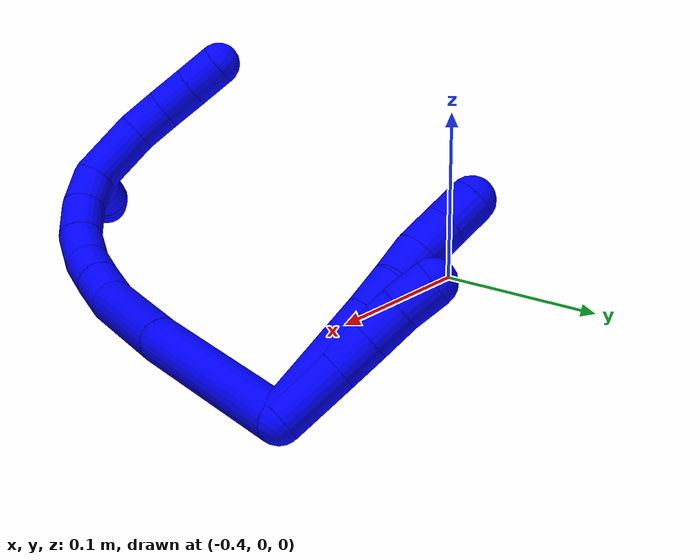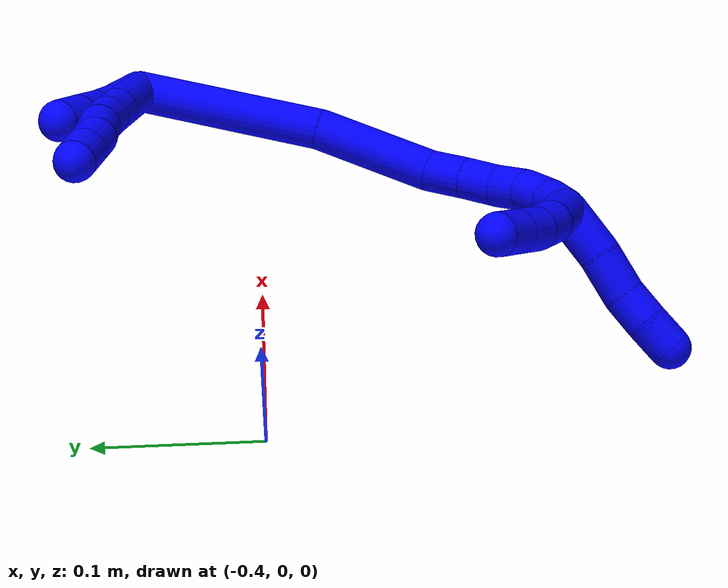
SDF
<sdf version="1.7">
 <world name="default">
  <model name="1">
   <static>0</static>
   <link name="1">
    <collision name="collision-cylinder-e_1_2_8">
     <pose>7.4e-05 0.002067 0.023846 -0.086455 0.003076 -0.000133</pose>
     <geometry><cylinder><radius>0.0125</radius><length>0.047871</length></cylinder></geometry>
     <surface>
      <friction><ode><mu>1.16</mu><mu2>1.16</mu2><slip1>0</slip1><slip2>0</slip2></ode></friction>
      <contact><ode><kp>1e+06</kp><kd>1</kd><max_vel>0</max_vel><min_depth>0.001</min_depth></ode></contact>
     </surface>
    </collision>
    <visual name="visual-cylinder-e_1_2_8">
     <pose>7.4e-05 0.002067 0.023846 -0.086455 0.003076 -0.000133</pose>
     <geometry><cylinder><radius>0.0125</radius><length>0.047871</length></cylinder></geometry>
     <material><ambient>0 0 1 1</ambient></material>
    </visual>
    <collision name="collision-cylinder-e_2_8_9">
     <pose>0.000148 0.005026 0.0579 -0.087249 3.4e-05 -1e-06</pose>
     <geometry><cylinder><radius>0.0125</radius><length>0.020493</length></cylinder></geometry>
     <surface>
      <friction><ode><mu>1.16</mu><mu2>1.16</mu2><slip1>0</slip1><slip2>0</slip2></ode></friction>
      <contact><ode><kp>1e+06</kp><kd>1</kd><max_vel>0</max_vel><min_depth>0.001</min_depth></ode></contact>
     </surface>
    </collision>
    <visual name="visual-cylinder-e_2_8_9">
     <pose>0.000148 0.005026 0.0579 -0.087249 3.4e-05 -1e-06</pose>
     <geometry><cylinder><radius>0.0125</radius><length>0.020493</length></cylinder></geometry>
     <material><ambient>0 0 1 1</ambient></material>
    </visual>
    <collision name="collision-cylinder-e_3_9_10">
     <pose>1.8e-05 0.006374 0.078804 -0.042488 -0.012103 0.000257</pose>
     <geometry><cylinder><radius>0.0125</radius><length>0.021415</length></cylinder></geometry>
     <surface>
      <friction><ode><mu>1.16</mu><mu2>1.16</mu2><slip1>0</slip1><slip2>0</slip2></ode></friction>
      <contact><ode><kp>1e+06</kp><kd>1</kd><max_vel>0</max_vel><min_depth>0.001</min_depth></ode></contact>
     </surface>
    </collision>
    <visual name="visual-cylinder-e_3_9_10">
     <pose>1.8e-05 0.006374 0.078804 -0.042488 -0.012103 0.000257</pose>
     <geometry><cylinder><radius>0.0125</radius><length>0.021415</length></cylinder></geometry>
     <material><ambient>0 0 1 1</ambient></material>
    </visual>
    <collision name="collision-cylinder-e_4_10_11">
     <pose>-0.001721 0.006243 0.099373 0.059308 -0.161403 -0.004798</pose>
     <geometry><cylinder><radius>0.0125</radius><length>0.02004</length></cylinder></geometry>
     <surface>
      <friction><ode><mu>1.16</mu><mu2>1.16</mu2><slip1>0</slip1><slip2>0</slip2></ode></friction>
      <contact><ode><kp>1e+06</kp><kd>1</kd><max_vel>0</max_vel><min_depth>0.001</min_depth></ode></contact>
     </surface>
    </collision>
    <visual name="visual-cylinder-e_4_10_11">
     <pose>-0.001721 0.006243 0.099373 0.059308 -0.161403 -0.004798</pose>
     <geometry><cylinder><radius>0.0125</radius><length>0.02004</length></cylinder></geometry>
     <material><ambient>0 0 1 1</ambient></material>
    </visual>
    <collision name="collision-cylinder-e_5_11_12">
     <pose>-0.004341 0.006939 0.119127 -0.12911 -0.101004 0.006535</pose>
     <geometry><cylinder><radius>0.0125</radius><length>0.02003</length></cylinder></geometry>
     <surface>
      <friction><ode><mu>1.16</mu><mu2>1.16</mu2><slip1>0</slip1><slip2>0</slip2></ode></friction>
      <contact><ode><kp>1e+06</kp><kd>1</kd><max_vel>0</max_vel><min_depth>0.001</min_depth></ode></contact>
     </surface>
    </collision>
    <visual name="visual-cylinder-e_5_11_12">
     <pose>-0.004341 0.006939 0.119127 -0.12911 -0.101004 0.006535</pose>
     <geometry><cylinder><radius>0.0125</radius><length>0.02003</length></cylinder></geometry>
     <material><ambient>0 0 1 1</ambient></material>
    </visual>
    <collision name="collision-cylinder-e_6_12_6">
     <pose>-0.006372 0.00952 0.138947 -0.129811 -0.101508 0.006603</pose>
     <geometry><cylinder><radius>0.0125</radius><length>0.020151</length></cylinder></geometry>
     <surface>
      <friction><ode><mu>1.16</mu><mu2>1.16</mu2><slip1>0</slip1><slip2>0</slip2></ode></friction>
      <contact><ode><kp>1e+06</kp><kd>1</kd><max_vel>0</max_vel><min_depth>0.001</min_depth></ode></contact>
     </surface>
    </collision>
    <visual name="visual-cylinder-e_6_12_6">
     <pose>-0.006372 0.00952 0.138947 -0.129811 -0.101508 0.006603</pose>
     <geometry><cylinder><radius>0.0125</radius><length>0.020151</length></cylinder></geometry>
     <material><ambient>0 0 1 1</ambient></material>
    </visual>
    <collision name="collision-cylinder-e_1_2_13">
     <pose>0.000536 0.004308 0.017839 -0.236956 0.029216 -0.003478</pose>
     <geometry><cylinder><radius>0.0125</radius><length>0.03672</length></cylinder></geometry>
     <surface>
      <friction><ode><mu>1.16</mu><mu2>1.16</mu2><slip1>0</slip1><slip2>0</slip2></ode></friction>
      <contact><ode><kp>1e+06</kp><kd>1</kd><max_vel>0</max_vel><min_depth>0.001</min_depth></ode></contact>
     </surface>
    </collision>
    <visual name="visual-cylinder-e_1_2_13">
     <pose>0.000536 0.004308 0.017839 -0.236956 0.029216 -0.003478</pose>
     <geometry><cylinder><radius>0.0125</radius><length>0.03672</length></cylinder></geometry>
     <material><ambient>0 0 1 1</ambient></material>
    </visual>
    <collision name="collision-cylinder-e_2_13_14">
     <pose>0.002017 0.011383 0.046001 -0.261838 0.088167 -0.011616</pose>
     <geometry><cylinder><radius>0.0125</radius><length>0.021457</length></cylinder></geometry>
     <surface>
      <friction><ode><mu>1.16</mu><mu2>1.16</mu2><slip1>0</slip1><slip2>0</slip2></ode></friction>
      <contact><ode><kp>1e+06</kp><kd>1</kd><max_vel>0</max_vel><min_depth>0.001</min_depth></ode></contact>
     </surface>
    </collision>
    <visual name="visual-cylinder-e_2_13_14">
     <pose>0.002017 0.011383 0.046001 -0.261838 0.088167 -0.011616</pose>
     <geometry><cylinder><radius>0.0125</radius><length>0.021457</length></cylinder></geometry>
     <material><ambient>0 0 1 1</ambient></material>
    </visual>
    <collision name="collision-cylinder-e_3_14_15">
     <pose>0.004508 0.017018 0.066477 -0.275365 0.145483 -0.020193</pose>
     <geometry><cylinder><radius>0.0125</radius><length>0.021326</length></cylinder></geometry>
     <surface>
      <friction><ode><mu>1.16</mu><mu2>1.16</mu2><slip1>0</slip1><slip2>0</slip2></ode></friction>
      <contact><ode><kp>1e+06</kp><kd>1</kd><max_vel>0</max_vel><min_depth>0.001</min_depth></ode></contact>
     </surface>
    </collision>
    <visual name="visual-cylinder-e_3_14_15">
     <pose>0.004508 0.017018 0.066477 -0.275365 0.145483 -0.020193</pose>
     <geometry><cylinder><radius>0.0125</radius><length>0.021326</length></cylinder></geometry>
     <material><ambient>0 0 1 1</ambient></material>
    </visual>
    <collision name="collision-cylinder-e_4_15_5">
     <pose>0.007408 0.02364 0.086069 -0.378475 0.132584 -0.02543</pose>
     <geometry><cylinder><radius>0.0125</radius><length>0.020497</length></cylinder></geometry>
     <surface>
      <friction><ode><mu>1.16</mu><mu2>1.16</mu2><slip1>0</slip1><slip2>0</slip2></ode></friction>
      <contact><ode><kp>1e+06</kp><kd>1</kd><max_vel>0</max_vel><min_depth>0.001</min_depth></ode></contact>
     </surface>
    </collision>
    <visual name="visual-cylinder-e_4_15_5">
     <pose>0.007408 0.02364 0.086069 -0.378475 0.132584 -0.02543</pose>
     <geometry><cylinder><radius>0.0125</radius><length>0.020497</length></cylinder></geometry>
     <material><ambient>0 0 1 1</ambient></material>
    </visual>
    <collision name="collision-cylinder-e_1_2_16">
     <pose>-0.023833 -0.052454 0.007282 1.43285 -0.422896 -0.369565</pose>
     <geometry><cylinder><radius>0.0125</radius><length>0.116147</length></cylinder></geometry>
     <surface>
      <friction><ode><mu>1.16</mu><mu2>1.16</mu2><slip1>0</slip1><slip2>0</slip2></ode></friction>
      <contact><ode><kp>1e+06</kp><kd>1</kd><max_vel>0</max_vel><min_depth>0.001</min_depth></ode></contact>
     </surface>
    </collision>
    <visual name="visual-cylinder-e_1_2_16">
     <pose>-0.023833 -0.052454 0.007282 1.43285 -0.422896 -0.369565</pose>
     <geometry><cylinder><radius>0.0125</radius><length>0.116147</length></cylinder></geometry>
     <material><ambient>0 0 1 1</ambient></material>
    </visual>
    <collision name="collision-cylinder-e_2_16_17">
     <pose>-0.066781 -0.135028 0.021354 1.34908 -0.55432 -0.447368</pose>
     <geometry><cylinder><radius>0.0125</radius><length>0.072625</length></cylinder></geometry>
     <surface>
      <friction><ode><mu>1.16</mu><mu2>1.16</mu2><slip1>0</slip1><slip2>0</slip2></ode></friction>
      <contact><ode><kp>1e+06</kp><kd>1</kd><max_vel>0</max_vel><min_depth>0.001</min_depth></ode></contact>
     </surface>
    </collision>
    <visual name="visual-cylinder-e_2_16_17">
     <pose>-0.066781 -0.135028 0.021354 1.34908 -0.55432 -0.447368</pose>
     <geometry><cylinder><radius>0.0125</radius><length>0.072625</length></cylinder></geometry>
     <material><ambient>0 0 1 1</ambient></material>
    </visual>
    <collision name="collision-cylinder-e_3_17_18">
     <pose>-0.089901 -0.175559 0.032056 1.2114 -0.34574 -0.240684</pose>
     <geometry><cylinder><radius>0.0125</radius><length>0.023645</length></cylinder></geometry>
     <surface>
      <friction><ode><mu>1.16</mu><mu2>1.16</mu2><slip1>0</slip1><slip2>0</slip2></ode></friction>
      <contact><ode><kp>1e+06</kp><kd>1</kd><max_vel>0</max_vel><min_depth>0.001</min_depth></ode></contact>
     </surface>
    </collision>
    <visual name="visual-cylinder-e_3_17_18">
     <pose>-0.089901 -0.175559 0.032056 1.2114 -0.34574 -0.240684</pose>
     <geometry><cylinder><radius>0.0125</radius><length>0.023645</length></cylinder></geometry>
     <material><ambient>0 0 1 1</ambient></material>
    </visual>
    <collision name="collision-cylinder-e_4_18_19">
     <pose>-0.097643 -0.195069 0.039848 1.16765 -0.361134 -0.24005</pose>
     <geometry><cylinder><radius>0.0125</radius><length>0.021145</length></cylinder></geometry>
     <surface>
      <friction><ode><mu>1.16</mu><mu2>1.16</mu2><slip1>0</slip1><slip2>0</slip2></ode></friction>
      <contact><ode><kp>1e+06</kp><kd>1</kd><max_vel>0</max_vel><min_depth>0.001</min_depth></ode></contact>
     </surface>
    </collision>
    <visual name="visual-cylinder-e_4_18_19">
     <pose>-0.097643 -0.195069 0.039848 1.16765 -0.361134 -0.24005</pose>
     <geometry><cylinder><radius>0.0125</radius><length>0.021145</length></cylinder></geometry>
     <material><ambient>0 0 1 1</ambient></material>
    </visual>
    <collision name="collision-cylinder-e_5_19_20">
     <pose>-0.103314 -0.212619 0.049746 0.952068 -0.184372 -0.095256</pose>
     <geometry><cylinder><radius>0.0125</radius><length>0.021108</length></cylinder></geometry>
     <surface>
      <friction><ode><mu>1.16</mu><mu2>1.16</mu2><slip1>0</slip1><slip2>0</slip2></ode></friction>
      <contact><ode><kp>1e+06</kp><kd>1</kd><max_vel>0</max_vel><min_depth>0.001</min_depth></ode></contact>
     </surface>
    </collision>
    <visual name="visual-cylinder-e_5_19_20">
     <pose>-0.103314 -0.212619 0.049746 0.952068 -0.184372 -0.095256</pose>
     <geometry><cylinder><radius>0.0125</radius><length>0.021108</length></cylinder></geometry>
     <material><ambient>0 0 1 1</ambient></material>
    </visual>
    <collision name="collision-cylinder-e_6_20_21">
     <pose>-0.10787 -0.228235 0.064594 0.681541 -0.22657 -0.080644</pose>
     <geometry><cylinder><radius>0.0125</radius><length>0.023339</length></cylinder></geometry>
     <surface>
      <friction><ode><mu>1.16</mu><mu2>1.16</mu2><slip1>0</slip1><slip2>0</slip2></ode></friction>
      <contact><ode><kp>1e+06</kp><kd>1</kd><max_vel>0</max_vel><min_depth>0.001</min_depth></ode></contact>
     </surface>
    </collision>
    <visual name="visual-cylinder-e_6_20_21">
     <pose>-0.10787 -0.228235 0.064594 0.681541 -0.22657 -0.080644</pose>
     <geometry><cylinder><radius>0.0125</radius><length>0.023339</length></cylinder></geometry>
     <material><ambient>0 0 1 1</ambient></material>
    </visual>
    <collision name="collision-cylinder-e_7_21_1">
     <pose>-0.111975 -0.23979 0.083396 0.41486 -0.135334 -0.028524</pose>
     <geometry><cylinder><radius>0.0125</radius><length>0.021991</length></cylinder></geometry>
     <surface>
      <friction><ode><mu>1.16</mu><mu2>1.16</mu2><slip1>0</slip1><slip2>0</slip2></ode></friction>
      <contact><ode><kp>1e+06</kp><kd>1</kd><max_vel>0</max_vel><min_depth>0.001</min_depth></ode></contact>
     </surface>
    </collision>
    <visual name="visual-cylinder-e_7_21_1">
     <pose>-0.111975 -0.23979 0.083396 0.41486 -0.135334 -0.028524</pose>
     <geometry><cylinder><radius>0.0125</radius><length>0.021991</length></cylinder></geometry>
     <material><ambient>0 0 1 1</ambient></material>
    </visual>
    <collision name="collision-cylinder-e_1_1_22">
     <pose>-0.111791 -0.241357 0.111247 -0.156619 0.091868 -0.007214</pose>
     <geometry><cylinder><radius>0.0125</radius><length>0.036357</length></cylinder></geometry>
     <surface>
      <friction><ode><mu>1.16</mu><mu2>1.16</mu2><slip1>0</slip1><slip2>0</slip2></ode></friction>
      <contact><ode><kp>1e+06</kp><kd>1</kd><max_vel>0</max_vel><min_depth>0.001</min_depth></ode></contact>
     </surface>
    </collision>
    <visual name="visual-cylinder-e_1_1_22">
     <pose>-0.111791 -0.241357 0.111247 -0.156619 0.091868 -0.007214</pose>
     <geometry><cylinder><radius>0.0125</radius><length>0.036357</length></cylinder></geometry>
     <material><ambient>0 0 1 1</ambient></material>
    </visual>
    <collision name="collision-cylinder-e_2_22_23">
     <pose>-0.108695 -0.235065 0.139061 -0.33597 0.134866 -0.022905</pose>
     <geometry><cylinder><radius>0.0125</radius><length>0.021237</length></cylinder></geometry>
     <surface>
      <friction><ode><mu>1.16</mu><mu2>1.16</mu2><slip1>0</slip1><slip2>0</slip2></ode></friction>
      <contact><ode><kp>1e+06</kp><kd>1</kd><max_vel>0</max_vel><min_depth>0.001</min_depth></ode></contact>
     </surface>
    </collision>
    <visual name="visual-cylinder-e_2_22_23">
     <pose>-0.108695 -0.235065 0.139061 -0.33597 0.134866 -0.022905</pose>
     <geometry><cylinder><radius>0.0125</radius><length>0.021237</length></cylinder></geometry>
     <material><ambient>0 0 1 1</ambient></material>
    </visual>
    <collision name="collision-cylinder-e_3_23_24">
     <pose>-0.104484 -0.227074 0.158411 -0.447662 0.260372 -0.059592</pose>
     <geometry><cylinder><radius>0.0125</radius><length>0.02162</length></cylinder></geometry>
     <surface>
      <friction><ode><mu>1.16</mu><mu2>1.16</mu2><slip1>0</slip1><slip2>0</slip2></ode></friction>
      <contact><ode><kp>1e+06</kp><kd>1</kd><max_vel>0</max_vel><min_depth>0.001</min_depth></ode></contact>
     </surface>
    </collision>
    <visual name="visual-cylinder-e_3_23_24">
     <pose>-0.104484 -0.227074 0.158411 -0.447662 0.260372 -0.059592</pose>
     <geometry><cylinder><radius>0.0125</radius><length>0.02162</length></cylinder></geometry>
     <material><ambient>0 0 1 1</ambient></material>
    </visual>
    <collision name="collision-cylinder-e_4_24_4">
     <pose>-0.099035 -0.218299 0.176927 -0.437278 0.259497 -0.057967</pose>
     <geometry><cylinder><radius>0.0125</radius><length>0.020786</length></cylinder></geometry>
     <surface>
      <friction><ode><mu>1.16</mu><mu2>1.16</mu2><slip1>0</slip1><slip2>0</slip2></ode></friction>
      <contact><ode><kp>1e+06</kp><kd>1</kd><max_vel>0</max_vel><min_depth>0.001</min_depth></ode></contact>
     </surface>
    </collision>
    <visual name="visual-cylinder-e_4_24_4">
     <pose>-0.099035 -0.218299 0.176927 -0.437278 0.259497 -0.057967</pose>
     <geometry><cylinder><radius>0.0125</radius><length>0.020786</length></cylinder></geometry>
     <material><ambient>0 0 1 1</ambient></material>
    </visual>
    <collision name="collision-cylinder-e_1_1_25">
     <pose>-0.127984 -0.250769 0.095837 1.21208 -1.11974 -0.819571</pose>
     <geometry><cylinder><radius>0.0125</radius><length>0.03228</length></cylinder></geometry>
     <surface>
      <friction><ode><mu>1.16</mu><mu2>1.16</mu2><slip1>0</slip1><slip2>0</slip2></ode></friction>
      <contact><ode><kp>1e+06</kp><kd>1</kd><max_vel>0</max_vel><min_depth>0.001</min_depth></ode></contact>
     </surface>
    </collision>
    <visual name="visual-cylinder-e_1_1_25">
     <pose>-0.127984 -0.250769 0.095837 1.21208 -1.11974 -0.819571</pose>
     <geometry><cylinder><radius>0.0125</radius><length>0.03228</length></cylinder></geometry>
     <material><ambient>0 0 1 1</ambient></material>
    </visual>
    <collision name="collision-cylinder-e_2_25_26">
     <pose>-0.155306 -0.26135 0.100158 1.13662 -1.2395 -0.855085</pose>
     <geometry><cylinder><radius>0.0125</radius><length>0.027064</length></cylinder></geometry>
     <surface>
      <friction><ode><mu>1.16</mu><mu2>1.16</mu2><slip1>0</slip1><slip2>0</slip2></ode></friction>
      <contact><ode><kp>1e+06</kp><kd>1</kd><max_vel>0</max_vel><min_depth>0.001</min_depth></ode></contact>
     </surface>
    </collision>
    <visual name="visual-cylinder-e_2_25_26">
     <pose>-0.155306 -0.26135 0.100158 1.13662 -1.2395 -0.855085</pose>
     <geometry><cylinder><radius>0.0125</radius><length>0.027064</length></cylinder></geometry>
     <material><ambient>0 0 1 1</ambient></material>
    </visual>
    <collision name="collision-cylinder-e_3_26_27">
     <pose>-0.176911 -0.269849 0.104103 1.13594 -1.0573 -0.71355</pose>
     <geometry><cylinder><radius>0.0125</radius><length>0.020227</length></cylinder></geometry>
     <surface>
      <friction><ode><mu>1.16</mu><mu2>1.16</mu2><slip1>0</slip1><slip2>0</slip2></ode></friction>
      <contact><ode><kp>1e+06</kp><kd>1</kd><max_vel>0</max_vel><min_depth>0.001</min_depth></ode></contact>
     </surface>
    </collision>
    <visual name="visual-cylinder-e_3_26_27">
     <pose>-0.176911 -0.269849 0.104103 1.13594 -1.0573 -0.71355</pose>
     <geometry><cylinder><radius>0.0125</radius><length>0.020227</length></cylinder></geometry>
     <material><ambient>0 0 1 1</ambient></material>
    </visual>
    <collision name="collision-cylinder-e_4_27_3">
     <pose>-0.194693 -0.27915 0.107105 1.38329 -1.07256 -0.9148</pose>
     <geometry><cylinder><radius>0.0125</radius><length>0.020429</length></cylinder></geometry>
     <surface>
      <friction><ode><mu>1.16</mu><mu2>1.16</mu2><slip1>0</slip1><slip2>0</slip2></ode></friction>
      <contact><ode><kp>1e+06</kp><kd>1</kd><max_vel>0</max_vel><min_depth>0.001</min_depth></ode></contact>
     </surface>
    </collision>
    <visual name="visual-cylinder-e_4_27_3">
     <pose>-0.194693 -0.27915 0.107105 1.38329 -1.07256 -0.9148</pose>
     <geometry><cylinder><radius>0.0125</radius><length>0.020429</length></cylinder></geometry>
     <material><ambient>0 0 1 1</ambient></material>
    </visual>
    <collision name="collision-sphere-3">
     <pose>-0.203666 -0.283946 0.108015 0 -0 0</pose>
     <geometry><sphere><radius>0.0125</radius></sphere></geometry>
     <surface>
      <friction><ode><mu>1.16</mu><mu2>1.16</mu2><slip1>0</slip1><slip2>0</slip2></ode></friction>
      <contact><ode><kp>1e+06</kp><kd>1</kd><max_vel>0</max_vel><min_depth>0.001</min_depth></ode></contact>
     </surface>
    </collision>
    <visual name="visual-sphere-3">
     <pose>-0.203666 -0.283946 0.108015 0 -0 0</pose>
     <geometry><sphere><radius>0.0125</radius></sphere></geometry>
     <material><ambient>0 0 1 1</ambient></material>
    </visual>
    <collision name="collision-sphere-27">
     <pose>-0.18572 -0.274354 0.106196 0 -0 0</pose>
     <geometry><sphere><radius>0.0125</radius></sphere></geometry>
     <surface>
      <friction><ode><mu>1.16</mu><mu2>1.16</mu2><slip1>0</slip1><slip2>0</slip2></ode></friction>
      <contact><ode><kp>1e+06</kp><kd>1</kd><max_vel>0</max_vel><min_depth>0.001</min_depth></ode></contact>
     </surface>
    </collision>
    <visual name="visual-sphere-27">
     <pose>-0.18572 -0.274354 0.106196 0 -0 0</pose>
     <geometry><sphere><radius>0.0125</radius></sphere></geometry>
     <material><ambient>0 0 1 1</ambient></material>
    </visual>
    <collision name="collision-sphere-26">
     <pose>-0.168102 -0.265343 0.10201 0 -0 0</pose>
     <geometry><sphere><radius>0.0125</radius></sphere></geometry>
     <surface>
      <friction><ode><mu>1.16</mu><mu2>1.16</mu2><slip1>0</slip1><slip2>0</slip2></ode></friction>
      <contact><ode><kp>1e+06</kp><kd>1</kd><max_vel>0</max_vel><min_depth>0.001</min_depth></ode></contact>
     </surface>
    </collision>
    <visual name="visual-sphere-26">
     <pose>-0.168102 -0.265343 0.10201 0 -0 0</pose>
     <geometry><sphere><radius>0.0125</radius></sphere></geometry>
     <material><ambient>0 0 1 1</ambient></material>
    </visual>
    <collision name="collision-sphere-25">
     <pose>-0.14251 -0.257357 0.098307 0 -0 0</pose>
     <geometry><sphere><radius>0.0125</radius></sphere></geometry>
     <surface>
      <friction><ode><mu>1.16</mu><mu2>1.16</mu2><slip1>0</slip1><slip2>0</slip2></ode></friction>
      <contact><ode><kp>1e+06</kp><kd>1</kd><max_vel>0</max_vel><min_depth>0.001</min_depth></ode></contact>
     </surface>
    </collision>
    <visual name="visual-sphere-25">
     <pose>-0.14251 -0.257357 0.098307 0 -0 0</pose>
     <geometry><sphere><radius>0.0125</radius></sphere></geometry>
     <material><ambient>0 0 1 1</ambient></material>
    </visual>
    <collision name="collision-sphere-4">
     <pose>-0.096368 -0.214045 0.186027 0 -0 0</pose>
     <geometry><sphere><radius>0.0125</radius></sphere></geometry>
     <surface>
      <friction><ode><mu>1.16</mu><mu2>1.16</mu2><slip1>0</slip1><slip2>0</slip2></ode></friction>
      <contact><ode><kp>1e+06</kp><kd>1</kd><max_vel>0</max_vel><min_depth>0.001</min_depth></ode></contact>
     </surface>
    </collision>
    <visual name="visual-sphere-4">
     <pose>-0.096368 -0.214045 0.186027 0 -0 0</pose>
     <geometry><sphere><radius>0.0125</radius></sphere></geometry>
     <material><ambient>0 0 1 1</ambient></material>
    </visual>
    <collision name="collision-sphere-24">
     <pose>-0.101701 -0.222553 0.167828 0 -0 0</pose>
     <geometry><sphere><radius>0.0125</radius></sphere></geometry>
     <surface>
      <friction><ode><mu>1.16</mu><mu2>1.16</mu2><slip1>0</slip1><slip2>0</slip2></ode></friction>
      <contact><ode><kp>1e+06</kp><kd>1</kd><max_vel>0</max_vel><min_depth>0.001</min_depth></ode></contact>
     </surface>
    </collision>
    <visual name="visual-sphere-24">
     <pose>-0.101701 -0.222553 0.167828 0 -0 0</pose>
     <geometry><sphere><radius>0.0125</radius></sphere></geometry>
     <material><ambient>0 0 1 1</ambient></material>
    </visual>
    <collision name="collision-sphere-23">
     <pose>-0.107267 -0.231596 0.148994 0 -0 0</pose>
     <geometry><sphere><radius>0.0125</radius></sphere></geometry>
     <surface>
      <friction><ode><mu>1.16</mu><mu2>1.16</mu2><slip1>0</slip1><slip2>0</slip2></ode></friction>
      <contact><ode><kp>1e+06</kp><kd>1</kd><max_vel>0</max_vel><min_depth>0.001</min_depth></ode></contact>
     </surface>
    </collision>
    <visual name="visual-sphere-23">
     <pose>-0.107267 -0.231596 0.148994 0 -0 0</pose>
     <geometry><sphere><radius>0.0125</radius></sphere></geometry>
     <material><ambient>0 0 1 1</ambient></material>
    </visual>
    <collision name="collision-sphere-22">
     <pose>-0.110123 -0.238534 0.129127 0 -0 0</pose>
     <geometry><sphere><radius>0.0125</radius></sphere></geometry>
     <surface>
      <friction><ode><mu>1.16</mu><mu2>1.16</mu2><slip1>0</slip1><slip2>0</slip2></ode></friction>
      <contact><ode><kp>1e+06</kp><kd>1</kd><max_vel>0</max_vel><min_depth>0.001</min_depth></ode></contact>
     </surface>
    </collision>
    <visual name="visual-sphere-22">
     <pose>-0.110123 -0.238534 0.129127 0 -0 0</pose>
     <geometry><sphere><radius>0.0125</radius></sphere></geometry>
     <material><ambient>0 0 1 1</ambient></material>
    </visual>
    <collision name="collision-sphere-1">
     <pose>-0.113458 -0.244181 0.093367 0 -0 0</pose>
     <geometry><sphere><radius>0.0125</radius></sphere></geometry>
     <surface>
      <friction><ode><mu>1.16</mu><mu2>1.16</mu2><slip1>0</slip1><slip2>0</slip2></ode></friction>
      <contact><ode><kp>1e+06</kp><kd>1</kd><max_vel>0</max_vel><min_depth>0.001</min_depth></ode></contact>
     </surface>
    </collision>
    <visual name="visual-sphere-1">
     <pose>-0.113458 -0.244181 0.093367 0 -0 0</pose>
     <geometry><sphere><radius>0.0125</radius></sphere></geometry>
     <material><ambient>0 0 1 1</ambient></material>
    </visual>
    <collision name="collision-sphere-21">
     <pose>-0.110491 -0.235398 0.073425 0 -0 0</pose>
     <geometry><sphere><radius>0.0125</radius></sphere></geometry>
     <surface>
      <friction><ode><mu>1.16</mu><mu2>1.16</mu2><slip1>0</slip1><slip2>0</slip2></ode></friction>
      <contact><ode><kp>1e+06</kp><kd>1</kd><max_vel>0</max_vel><min_depth>0.001</min_depth></ode></contact>
     </surface>
    </collision>
    <visual name="visual-sphere-21">
     <pose>-0.110491 -0.235398 0.073425 0 -0 0</pose>
     <geometry><sphere><radius>0.0125</radius></sphere></geometry>
     <material><ambient>0 0 1 1</ambient></material>
    </visual>
    <collision name="collision-sphere-12">
     <pose>-0.005351 0.008222 0.129008 0 -0 0</pose>
     <geometry><sphere><radius>0.0125</radius></sphere></geometry>
     <surface>
      <friction><ode><mu>1.16</mu><mu2>1.16</mu2><slip1>0</slip1><slip2>0</slip2></ode></friction>
      <contact><ode><kp>1e+06</kp><kd>1</kd><max_vel>0</max_vel><min_depth>0.001</min_depth></ode></contact>
     </surface>
    </collision>
    <visual name="visual-sphere-12">
     <pose>-0.005351 0.008222 0.129008 0 -0 0</pose>
     <geometry><sphere><radius>0.0125</radius></sphere></geometry>
     <material><ambient>0 0 1 1</ambient></material>
    </visual>
    <collision name="collision-sphere-11">
     <pose>-0.003332 0.005656 0.109246 0 -0 0</pose>
     <geometry><sphere><radius>0.0125</radius></sphere></geometry>
     <surface>
      <friction><ode><mu>1.16</mu><mu2>1.16</mu2><slip1>0</slip1><slip2>0</slip2></ode></friction>
      <contact><ode><kp>1e+06</kp><kd>1</kd><max_vel>0</max_vel><min_depth>0.001</min_depth></ode></contact>
     </surface>
    </collision>
    <visual name="visual-sphere-11">
     <pose>-0.003332 0.005656 0.109246 0 -0 0</pose>
     <geometry><sphere><radius>0.0125</radius></sphere></geometry>
     <material><ambient>0 0 1 1</ambient></material>
    </visual>
    <collision name="collision-sphere-10">
     <pose>-0.000111 0.006829 0.089501 0 -0 0</pose>
     <geometry><sphere><radius>0.0125</radius></sphere></geometry>
     <surface>
      <friction><ode><mu>1.16</mu><mu2>1.16</mu2><slip1>0</slip1><slip2>0</slip2></ode></friction>
      <contact><ode><kp>1e+06</kp><kd>1</kd><max_vel>0</max_vel><min_depth>0.001</min_depth></ode></contact>
     </surface>
    </collision>
    <visual name="visual-sphere-10">
     <pose>-0.000111 0.006829 0.089501 0 -0 0</pose>
     <geometry><sphere><radius>0.0125</radius></sphere></geometry>
     <material><ambient>0 0 1 1</ambient></material>
    </visual>
    <collision name="collision-sphere-9">
     <pose>0.000148 0.005919 0.068107 0 -0 0</pose>
     <geometry><sphere><radius>0.0125</radius></sphere></geometry>
     <surface>
      <friction><ode><mu>1.16</mu><mu2>1.16</mu2><slip1>0</slip1><slip2>0</slip2></ode></friction>
      <contact><ode><kp>1e+06</kp><kd>1</kd><max_vel>0</max_vel><min_depth>0.001</min_depth></ode></contact>
     </surface>
    </collision>
    <visual name="visual-sphere-9">
     <pose>0.000148 0.005919 0.068107 0 -0 0</pose>
     <geometry><sphere><radius>0.0125</radius></sphere></geometry>
     <material><ambient>0 0 1 1</ambient></material>
    </visual>
    <collision name="collision-sphere-2">
     <geometry><sphere><radius>0.0125</radius></sphere></geometry>
     <surface>
      <friction><ode><mu>1.16</mu><mu2>1.16</mu2><slip1>0</slip1><slip2>0</slip2></ode></friction>
      <contact><ode><kp>1e+06</kp><kd>1</kd><max_vel>0</max_vel><min_depth>0.001</min_depth></ode></contact>
     </surface>
    </collision>
    <visual name="visual-sphere-2">
     <geometry><sphere><radius>0.0125</radius></sphere></geometry>
     <material><ambient>0 0 1 1</ambient></material>
    </visual>
    <collision name="collision-sphere-19">
     <pose>-0.101379 -0.204167 0.043728 0 -0 0</pose>
     <geometry><sphere><radius>0.0125</radius></sphere></geometry>
     <surface>
      <friction><ode><mu>1.16</mu><mu2>1.16</mu2><slip1>0</slip1><slip2>0</slip2></ode></friction>
      <contact><ode><kp>1e+06</kp><kd>1</kd><max_vel>0</max_vel><min_depth>0.001</min_depth></ode></contact>
     </surface>
    </collision>
    <visual name="visual-sphere-19">
     <pose>-0.101379 -0.204167 0.043728 0 -0 0</pose>
     <geometry><sphere><radius>0.0125</radius></sphere></geometry>
     <material><ambient>0 0 1 1</ambient></material>
    </visual>
    <collision name="collision-sphere-8">
     <pose>0.000147 0.004134 0.047692 0 -0 0</pose>
     <geometry><sphere><radius>0.0125</radius></sphere></geometry>
     <surface>
      <friction><ode><mu>1.16</mu><mu2>1.16</mu2><slip1>0</slip1><slip2>0</slip2></ode></friction>
      <contact><ode><kp>1e+06</kp><kd>1</kd><max_vel>0</max_vel><min_depth>0.001</min_depth></ode></contact>
     </surface>
    </collision>
    <visual name="visual-sphere-8">
     <pose>0.000147 0.004134 0.047692 0 -0 0</pose>
     <geometry><sphere><radius>0.0125</radius></sphere></geometry>
     <material><ambient>0 0 1 1</ambient></material>
    </visual>
    <collision name="collision-sphere-6">
     <pose>-0.007393 0.010817 0.148887 0 -0 0</pose>
     <geometry><sphere><radius>0.0125</radius></sphere></geometry>
     <surface>
      <friction><ode><mu>1.16</mu><mu2>1.16</mu2><slip1>0</slip1><slip2>0</slip2></ode></friction>
      <contact><ode><kp>1e+06</kp><kd>1</kd><max_vel>0</max_vel><min_depth>0.001</min_depth></ode></contact>
     </surface>
    </collision>
    <visual name="visual-sphere-6">
     <pose>-0.007393 0.010817 0.148887 0 -0 0</pose>
     <geometry><sphere><radius>0.0125</radius></sphere></geometry>
     <material><ambient>0 0 1 1</ambient></material>
    </visual>
    <collision name="collision-sphere-13">
     <pose>0.001073 0.008616 0.035679 0 -0 0</pose>
     <geometry><sphere><radius>0.0125</radius></sphere></geometry>
     <surface>
      <friction><ode><mu>1.16</mu><mu2>1.16</mu2><slip1>0</slip1><slip2>0</slip2></ode></friction>
      <contact><ode><kp>1e+06</kp><kd>1</kd><max_vel>0</max_vel><min_depth>0.001</min_depth></ode></contact>
     </surface>
    </collision>
    <visual name="visual-sphere-13">
     <pose>0.001073 0.008616 0.035679 0 -0 0</pose>
     <geometry><sphere><radius>0.0125</radius></sphere></geometry>
     <material><ambient>0 0 1 1</ambient></material>
    </visual>
    <collision name="collision-sphere-14">
     <pose>0.002962 0.014149 0.056324 0 -0 0</pose>
     <geometry><sphere><radius>0.0125</radius></sphere></geometry>
     <surface>
      <friction><ode><mu>1.16</mu><mu2>1.16</mu2><slip1>0</slip1><slip2>0</slip2></ode></friction>
      <contact><ode><kp>1e+06</kp><kd>1</kd><max_vel>0</max_vel><min_depth>0.001</min_depth></ode></contact>
     </surface>
    </collision>
    <visual name="visual-sphere-14">
     <pose>0.002962 0.014149 0.056324 0 -0 0</pose>
     <geometry><sphere><radius>0.0125</radius></sphere></geometry>
     <material><ambient>0 0 1 1</ambient></material>
    </visual>
    <collision name="collision-sphere-15">
     <pose>0.006054 0.019886 0.07663 0 -0 0</pose>
     <geometry><sphere><radius>0.0125</radius></sphere></geometry>
     <surface>
      <friction><ode><mu>1.16</mu><mu2>1.16</mu2><slip1>0</slip1><slip2>0</slip2></ode></friction>
      <contact><ode><kp>1e+06</kp><kd>1</kd><max_vel>0</max_vel><min_depth>0.001</min_depth></ode></contact>
     </surface>
    </collision>
    <visual name="visual-sphere-15">
     <pose>0.006054 0.019886 0.07663 0 -0 0</pose>
     <geometry><sphere><radius>0.0125</radius></sphere></geometry>
     <material><ambient>0 0 1 1</ambient></material>
    </visual>
    <collision name="collision-sphere-5">
     <pose>0.008763 0.027393 0.095509 0 -0 0</pose>
     <geometry><sphere><radius>0.0125</radius></sphere></geometry>
     <surface>
      <friction><ode><mu>1.16</mu><mu2>1.16</mu2><slip1>0</slip1><slip2>0</slip2></ode></friction>
      <contact><ode><kp>1e+06</kp><kd>1</kd><max_vel>0</max_vel><min_depth>0.001</min_depth></ode></contact>
     </surface>
    </collision>
    <visual name="visual-sphere-5">
     <pose>0.008763 0.027393 0.095509 0 -0 0</pose>
     <geometry><sphere><radius>0.0125</radius></sphere></geometry>
     <material><ambient>0 0 1 1</ambient></material>
    </visual>
    <collision name="collision-sphere-16">
     <pose>-0.047667 -0.104909 0.014564 0 -0 0</pose>
     <geometry><sphere><radius>0.0125</radius></sphere></geometry>
     <surface>
      <friction><ode><mu>1.16</mu><mu2>1.16</mu2><slip1>0</slip1><slip2>0</slip2></ode></friction>
      <contact><ode><kp>1e+06</kp><kd>1</kd><max_vel>0</max_vel><min_depth>0.001</min_depth></ode></contact>
     </surface>
    </collision>
    <visual name="visual-sphere-16">
     <pose>-0.047667 -0.104909 0.014564 0 -0 0</pose>
     <geometry><sphere><radius>0.0125</radius></sphere></geometry>
     <material><ambient>0 0 1 1</ambient></material>
    </visual>
    <collision name="collision-sphere-17">
     <pose>-0.085894 -0.165147 0.028144 0 -0 0</pose>
     <geometry><sphere><radius>0.0125</radius></sphere></geometry>
     <surface>
      <friction><ode><mu>1.16</mu><mu2>1.16</mu2><slip1>0</slip1><slip2>0</slip2></ode></friction>
      <contact><ode><kp>1e+06</kp><kd>1</kd><max_vel>0</max_vel><min_depth>0.001</min_depth></ode></contact>
     </surface>
    </collision>
    <visual name="visual-sphere-17">
     <pose>-0.085894 -0.165147 0.028144 0 -0 0</pose>
     <geometry><sphere><radius>0.0125</radius></sphere></geometry>
     <material><ambient>0 0 1 1</ambient></material>
    </visual>
    <collision name="collision-sphere-18">
     <pose>-0.093907 -0.185972 0.035968 0 -0 0</pose>
     <geometry><sphere><radius>0.0125</radius></sphere></geometry>
     <surface>
      <friction><ode><mu>1.16</mu><mu2>1.16</mu2><slip1>0</slip1><slip2>0</slip2></ode></friction>
      <contact><ode><kp>1e+06</kp><kd>1</kd><max_vel>0</max_vel><min_depth>0.001</min_depth></ode></contact>
     </surface>
    </collision>
    <visual name="visual-sphere-18">
     <pose>-0.093907 -0.185972 0.035968 0 -0 0</pose>
     <geometry><sphere><radius>0.0125</radius></sphere></geometry>
     <material><ambient>0 0 1 1</ambient></material>
    </visual>
    <collision name="collision-sphere-20">
     <pose>-0.105249 -0.221071 0.055763 0 -0 0</pose>
     <geometry><sphere><radius>0.0125</radius></sphere></geometry>
     <surface>
      <friction><ode><mu>1.16</mu><mu2>1.16</mu2><slip1>0</slip1><slip2>0</slip2></ode></friction>
      <contact><ode><kp>1e+06</kp><kd>1</kd><max_vel>0</max_vel><min_depth>0.001</min_depth></ode></contact>
     </surface>
    </collision>
    <visual name="visual-sphere-20">
     <pose>-0.105249 -0.221071 0.055763 0 -0 0</pose>
     <geometry><sphere><radius>0.0125</radius></sphere></geometry>
     <material><ambient>0 0 1 1</ambient></material>
    </visual>
    <inertial>
     <pose>-0.060642 -0.115682 0.064806 0 -0 0</pose>
     <mass>0.75</mass>
     <inertia>
      <ixx>0.000116</ixx>
      <ixy>0</ixy>
      <ixz>0</ixz>
      <iyy>2.6e-05</iyy>
      <iyz>0</iyz>
      <izz>0.000272</izz>
     </inertia>
    </inertial>
   </link>
   <pose>-0.153722 0.072091 0.011468 -0.394594 -0.797618 0.341183</pose>
  </model>
 </world>
</sdf>
